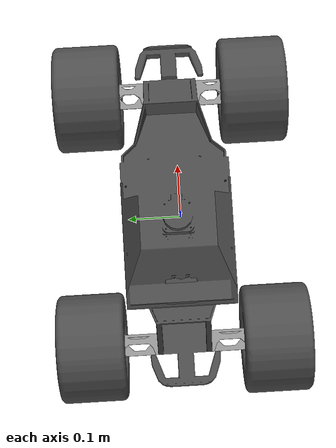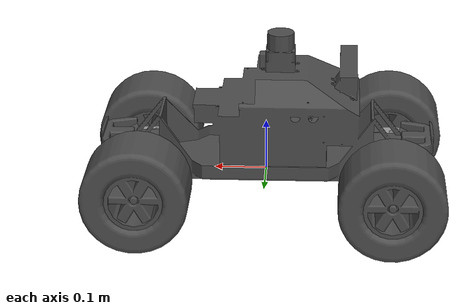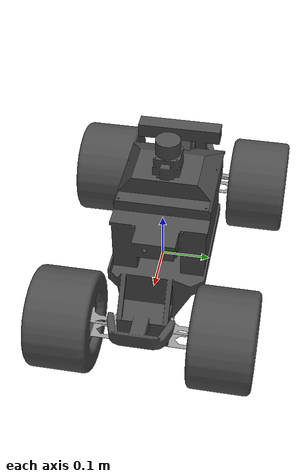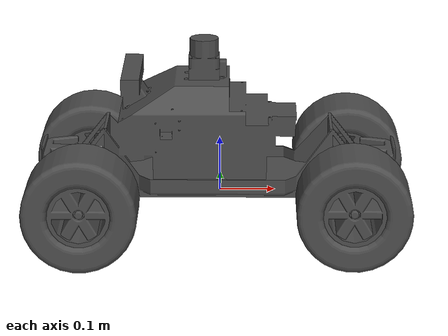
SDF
<sdf version="1.7">
 <model name="upgradedrobot">
  <link name="chassis">
   <inertial>
    <mass>25</mass>
    <inertia><ixx>0.001</ixx><ixy>0</ixy><ixz>0</ixz><iyy>0.001</iyy><iyz>0</iyz><izz>0.001</izz></inertia>
   </inertial>
   <pose>-0.00223 0.006439 -0.001176 0 -0 0</pose>
   <visual name="visual_chassis">
    <geometry><mesh><uri>/home/shea/CAD/upgradedrobot/chassisbox.dae</uri><scale>1 1 1</scale></mesh></geometry>
    <material>
     <lighting>1</lighting>
     <script><uri>file://media/materials/scripts/gazebo.material</uri><name>Gazebo/DarkGrey</name></script>
     <shader type="pixel"><normal_map>__default__</normal_map></shader>
     <ambient>0.3 0.3 0.3 1</ambient>
     <diffuse>0.7 0.7 0.7 1</diffuse>
     <specular>0.01 0.01 0.01 1</specular>
     <emissive>0 0 0 1</emissive>
    </material>
   </visual>
   <collision name="collision_chassis">
    <geometry><mesh><uri>/home/shea/CAD/upgradedrobot/chassisbox.dae</uri><scale>1 1 1</scale></mesh></geometry>
    <surface>
     <friction>
      <ode><mu>1</mu><mu2>1</mu2><fdir1>0 0 0</fdir1><slip1>0</slip1><slip2>0</slip2></ode>
      <torsional>
       <coefficient>1</coefficient>
       <patch_radius>0</patch_radius>
       <surface_radius>0</surface_radius>
       <use_patch_radius>1</use_patch_radius>
       <ode><slip>0</slip></ode>
      </torsional>
     </friction>
     <bounce><restitution_coefficient>0</restitution_coefficient><threshold>1e+06</threshold></bounce>
     <contact>
      <collide_without_contact>0</collide_without_contact>
      <collide_without_contact_bitmask>1</collide_without_contact_bitmask>
      <collide_bitmask>1</collide_bitmask>
      <ode>
       <soft_cfm>0</soft_cfm>
       <soft_erp>0.2</soft_erp>
       <kp>1e+13</kp>
       <kd>1</kd>
       <max_vel>0.01</max_vel>
       <min_depth>0</min_depth>
      </ode>
      <bullet>
       <split_impulse>1</split_impulse>
       <split_impulse_penetration_threshold>-0.01</split_impulse_penetration_threshold>
       <soft_cfm>0</soft_cfm>
       <soft_erp>0.2</soft_erp>
       <kp>1e+13</kp>
       <kd>1</kd>
      </bullet>
     </contact>
    </surface>
   </collision>
  </link>
  <link name="FLBwing">
   <inertial>
    <mass>0.2</mass>
    <inertia>
     <ixx>0.166667</ixx>
     <ixy>0</ixy>
     <ixz>0</ixz>
     <iyy>0.166667</iyy>
     <iyz>0</iyz>
     <izz>0.166667</izz>
    </inertia>
   </inertial>
   <pose>-0.24223 -0.079811 -0.002176 0 -0 1.5708</pose>
   <visual name="visualFLTwing">
    <geometry>
     <mesh><uri>/home/shea/CAD/upgradedrobot/frontlongbottomwing.dae</uri><scale>1 1 1</scale></mesh>
    </geometry>
    <material>
     <lighting>1</lighting>
     <script><uri>file://media/materials/scripts/gazebo.material</uri><name>Gazebo/Grey</name></script>
     <shader type="pixel"/>
     <emissive>0 0 0 1</emissive>
    </material>
   </visual>
   <collision name="collision_FLTwing">
    <geometry>
     <mesh><uri>/home/shea/CAD/upgradedrobot/frontlongbottomwing.dae</uri><scale>1 1 1</scale></mesh>
    </geometry>
    <surface>
     <friction>
      <ode><mu>1</mu><mu2>1</mu2><fdir1>0 0 0</fdir1><slip1>0</slip1><slip2>0</slip2></ode>
      <torsional>
       <coefficient>1</coefficient>
       <patch_radius>0</patch_radius>
       <surface_radius>0</surface_radius>
       <use_patch_radius>1</use_patch_radius>
       <ode><slip>0</slip></ode>
      </torsional>
     </friction>
     <bounce><restitution_coefficient>0</restitution_coefficient><threshold>1e+06</threshold></bounce>
     <contact>
      <collide_without_contact>0</collide_without_contact>
      <collide_without_contact_bitmask>1</collide_without_contact_bitmask>
      <collide_bitmask>1</collide_bitmask>
      <ode>
       <soft_cfm>0</soft_cfm>
       <soft_erp>0.2</soft_erp>
       <kp>1e+13</kp>
       <kd>1</kd>
       <max_vel>0.01</max_vel>
       <min_depth>0</min_depth>
      </ode>
      <bullet>
       <split_impulse>1</split_impulse>
       <split_impulse_penetration_threshold>-0.01</split_impulse_penetration_threshold>
       <soft_cfm>0</soft_cfm>
       <soft_erp>0.2</soft_erp>
       <kp>1e+13</kp>
       <kd>1</kd>
      </bullet>
     </contact>
    </surface>
   </collision>
  </link>
  <link name="BRTwing">
   <inertial>
    <mass>0.2</mass>
    <inertia>
     <ixx>0.166667</ixx>
     <ixy>0</ixy>
     <ixz>0</ixz>
     <iyy>0.166667</iyy>
     <iyz>0</iyz>
     <izz>0.166667</izz>
    </inertia>
   </inertial>
   <pose>0.23777 0.085189 0.038824 0 0 -1.5708</pose>
   <visual name="visual_BRTwing">
    <geometry>
     <mesh><uri>/home/shea/CAD/upgradedrobot/blackshorttopwing.dae</uri><scale>1 1 1</scale></mesh>
    </geometry>
    <material>
     <lighting>1</lighting>
     <script><uri>file://media/materials/scripts/gazebo.material</uri><name>Gazebo/Grey</name></script>
     <shader type="pixel"/>
     <emissive>0 0 0 1</emissive>
    </material>
   </visual>
   <collision name="collision_BRTwing">
    <geometry>
     <mesh><uri>/home/shea/CAD/upgradedrobot/blackshorttopwing.dae</uri><scale>1 1 1</scale></mesh>
    </geometry>
    <surface>
     <friction>
      <ode><mu>1</mu><mu2>1</mu2><fdir1>0 0 0</fdir1><slip1>0</slip1><slip2>0</slip2></ode>
      <torsional>
       <coefficient>1</coefficient>
       <patch_radius>0</patch_radius>
       <surface_radius>0</surface_radius>
       <use_patch_radius>1</use_patch_radius>
       <ode><slip>0</slip></ode>
      </torsional>
     </friction>
     <bounce><restitution_coefficient>0</restitution_coefficient><threshold>1e+06</threshold></bounce>
     <contact>
      <collide_without_contact>0</collide_without_contact>
      <collide_without_contact_bitmask>1</collide_without_contact_bitmask>
      <collide_bitmask>1</collide_bitmask>
      <ode>
       <soft_cfm>0</soft_cfm>
       <soft_erp>0.2</soft_erp>
       <kp>1e+13</kp>
       <kd>1</kd>
       <max_vel>0.01</max_vel>
       <min_depth>0</min_depth>
      </ode>
      <bullet>
       <split_impulse>1</split_impulse>
       <split_impulse_penetration_threshold>-0.01</split_impulse_penetration_threshold>
       <soft_cfm>0</soft_cfm>
       <soft_erp>0.2</soft_erp>
       <kp>1e+13</kp>
       <kd>1</kd>
      </bullet>
     </contact>
    </surface>
   </collision>
  </link>
  <link name="BRspindle">
   <inertial>
    <mass>0.2</mass>
    <inertia>
     <ixx>0.166667</ixx>
     <ixy>0</ixy>
     <ixz>0</ixz>
     <iyy>0.166667</iyy>
     <iyz>0</iyz>
     <izz>0.166667</izz>
    </inertia>
   </inertial>
   <pose>0.23777 0.111939 0.018824 0 -0 1.5708</pose>
   <visual name="visual_BRspindle">
    <geometry><mesh><uri>/home/shea/CAD/upgradedrobot/spindle.dae</uri><scale>1 1 1</scale></mesh></geometry>
    <material>
     <lighting>1</lighting>
     <script><uri>file://media/materials/scripts/gazebo.material</uri><name>Gazebo/Grey</name></script>
     <shader type="pixel"/>
     <emissive>0 0 0 1</emissive>
    </material>
   </visual>
   <collision name="collision_BRspindle">
    <geometry><mesh><uri>/home/shea/CAD/upgradedrobot/spindle.dae</uri><scale>1 1 1</scale></mesh></geometry>
    <surface>
     <friction>
      <ode><mu>1</mu><mu2>1</mu2><fdir1>0 0 0</fdir1><slip1>0</slip1><slip2>0</slip2></ode>
      <torsional>
       <coefficient>1</coefficient>
       <patch_radius>0</patch_radius>
       <surface_radius>0</surface_radius>
       <use_patch_radius>1</use_patch_radius>
       <ode><slip>0</slip></ode>
      </torsional>
     </friction>
     <bounce><restitution_coefficient>0</restitution_coefficient><threshold>1e+06</threshold></bounce>
     <contact>
      <collide_without_contact>0</collide_without_contact>
      <collide_without_contact_bitmask>1</collide_without_contact_bitmask>
      <collide_bitmask>1</collide_bitmask>
      <ode>
       <soft_cfm>0</soft_cfm>
       <soft_erp>0.2</soft_erp>
       <kp>1e+13</kp>
       <kd>1</kd>
       <max_vel>0.01</max_vel>
       <min_depth>0</min_depth>
      </ode>
      <bullet>
       <split_impulse>1</split_impulse>
       <split_impulse_penetration_threshold>-0.01</split_impulse_penetration_threshold>
       <soft_cfm>0</soft_cfm>
       <soft_erp>0.2</soft_erp>
       <kp>1e+13</kp>
       <kd>1</kd>
      </bullet>
     </contact>
    </surface>
   </collision>
  </link>
  <link name="BRwheel">
   <inertial>
    <mass>1</mass>
    <inertia>
     <ixx>0.166667</ixx>
     <ixy>0</ixy>
     <ixz>0</ixz>
     <iyy>0.166667</iyy>
     <iyz>0</iyz>
     <izz>0.166667</izz>
    </inertia>
   </inertial>
   <pose>0.23777 0.216939 0.018824 0 -0 3.14159</pose>
   <visual name="visual_BRwheel">
    <geometry><mesh><uri>/home/shea/CAD/upgradedrobot/wheel1.dae</uri><scale>1 1 1</scale></mesh></geometry>
    <material>
     <lighting>1</lighting>
     <script><uri>file://media/materials/scripts/gazebo.material</uri><name>Gazebo/DarkGrey</name></script>
     <shader type="pixel"/>
     <emissive>0 0 0 1</emissive>
    </material>
   </visual>
   <collision name="collision_BRwheel">
    <geometry><mesh><uri>/home/shea/CAD/upgradedrobot/wheel1.dae</uri><scale>1 1 1</scale></mesh></geometry>
    <surface>
     <friction>
      <ode><mu>1.4</mu><mu2>1.3</mu2><fdir1>0 0 0</fdir1><slip1>0</slip1><slip2>0</slip2></ode>
      <torsional>
       <coefficient>1.5</coefficient>
       <patch_radius>1</patch_radius>
       <surface_radius>0.21</surface_radius>
       <use_patch_radius>1</use_patch_radius>
       <ode><slip>0.2</slip></ode>
      </torsional>
     </friction>
     <bounce><restitution_coefficient>0.3</restitution_coefficient><threshold>1e+06</threshold></bounce>
     <contact>
      <collide_without_contact>0</collide_without_contact>
      <collide_without_contact_bitmask>1</collide_without_contact_bitmask>
      <collide_bitmask>1</collide_bitmask>
      <ode>
       <soft_cfm>0</soft_cfm>
       <soft_erp>0.2</soft_erp>
       <kp>1e+13</kp>
       <kd>1</kd>
       <max_vel>0.01</max_vel>
       <min_depth>0</min_depth>
      </ode>
      <bullet>
       <split_impulse>1</split_impulse>
       <split_impulse_penetration_threshold>-0.01</split_impulse_penetration_threshold>
       <soft_cfm>0</soft_cfm>
       <soft_erp>0.2</soft_erp>
       <kp>1e+13</kp>
       <kd>1</kd>
      </bullet>
     </contact>
    </surface>
   </collision>
  </link>
  <link name="BLBwing">
   <inertial>
    <mass>0.2</mass>
    <inertia>
     <ixx>0.166667</ixx>
     <ixy>0</ixy>
     <ixz>0</ixz>
     <iyy>0.166667</iyy>
     <iyz>0</iyz>
     <izz>0.166667</izz>
    </inertia>
   </inertial>
   <pose>0.23777 -0.072311 -0.002176 0 0 -1.5708</pose>
   <visual name="visual_BLBwing">
    <geometry>
     <mesh><uri>/home/shea/CAD/upgradedrobot/blackshortbottomwing.dae</uri><scale>1 1 1</scale></mesh>
    </geometry>
    <material>
     <lighting>1</lighting>
     <script><uri>file://media/materials/scripts/gazebo.material</uri><name>Gazebo/Grey</name></script>
     <shader type="pixel"/>
     <emissive>0 0 0 1</emissive>
    </material>
   </visual>
   <collision name="collision_BLBwing">
    <geometry>
     <mesh><uri>/home/shea/CAD/upgradedrobot/blackshortbottomwing.dae</uri><scale>1 1 1</scale></mesh>
    </geometry>
    <surface>
     <friction>
      <ode><mu>1</mu><mu2>1</mu2><fdir1>0 0 0</fdir1><slip1>0</slip1><slip2>0</slip2></ode>
      <torsional>
       <coefficient>1</coefficient>
       <patch_radius>0</patch_radius>
       <surface_radius>0</surface_radius>
       <use_patch_radius>1</use_patch_radius>
       <ode><slip>0</slip></ode>
      </torsional>
     </friction>
     <bounce><restitution_coefficient>0</restitution_coefficient><threshold>1e+06</threshold></bounce>
     <contact>
      <collide_without_contact>0</collide_without_contact>
      <collide_without_contact_bitmask>1</collide_without_contact_bitmask>
      <collide_bitmask>1</collide_bitmask>
      <ode>
       <soft_cfm>0</soft_cfm>
       <soft_erp>0.2</soft_erp>
       <kp>1e+13</kp>
       <kd>1</kd>
       <max_vel>0.01</max_vel>
       <min_depth>0</min_depth>
      </ode>
      <bullet>
       <split_impulse>1</split_impulse>
       <split_impulse_penetration_threshold>-0.01</split_impulse_penetration_threshold>
       <soft_cfm>0</soft_cfm>
       <soft_erp>0.2</soft_erp>
       <kp>1e+13</kp>
       <kd>1</kd>
      </bullet>
     </contact>
    </surface>
   </collision>
  </link>
  <link name="BLTwing">
   <inertial>
    <mass>0.2</mass>
    <inertia>
     <ixx>0.166667</ixx>
     <ixy>0</ixy>
     <ixz>0</ixz>
     <iyy>0.166667</iyy>
     <iyz>0</iyz>
     <izz>0.166667</izz>
    </inertia>
   </inertial>
   <pose>0.23777 -0.072311 0.038824 0 0 -1.5708</pose>
   <visual name="visual_BLTwing">
    <geometry>
     <mesh><uri>/home/shea/CAD/upgradedrobot/blackshorttopwing.dae</uri><scale>1 1 1</scale></mesh>
    </geometry>
    <material>
     <lighting>1</lighting>
     <script><uri>file://media/materials/scripts/gazebo.material</uri><name>Gazebo/Grey</name></script>
     <shader type="pixel"/>
     <emissive>0 0 0 1</emissive>
    </material>
   </visual>
   <collision name="collision_BLTwing">
    <geometry>
     <mesh><uri>/home/shea/CAD/upgradedrobot/blackshorttopwing.dae</uri><scale>1 1 1</scale></mesh>
    </geometry>
    <surface>
     <friction>
      <ode><mu>1</mu><mu2>1</mu2><fdir1>0 0 0</fdir1><slip1>0</slip1><slip2>0</slip2></ode>
      <torsional>
       <coefficient>1</coefficient>
       <patch_radius>0</patch_radius>
       <surface_radius>0</surface_radius>
       <use_patch_radius>1</use_patch_radius>
       <ode><slip>0</slip></ode>
      </torsional>
     </friction>
     <bounce><restitution_coefficient>0</restitution_coefficient><threshold>1e+06</threshold></bounce>
     <contact>
      <collide_without_contact>0</collide_without_contact>
      <collide_without_contact_bitmask>1</collide_without_contact_bitmask>
      <collide_bitmask>1</collide_bitmask>
      <ode>
       <soft_cfm>0</soft_cfm>
       <soft_erp>0.2</soft_erp>
       <kp>1e+13</kp>
       <kd>1</kd>
       <max_vel>0.01</max_vel>
       <min_depth>0</min_depth>
      </ode>
      <bullet>
       <split_impulse>1</split_impulse>
       <split_impulse_penetration_threshold>-0.01</split_impulse_penetration_threshold>
       <soft_cfm>0</soft_cfm>
       <soft_erp>0.2</soft_erp>
       <kp>1e+13</kp>
       <kd>1</kd>
      </bullet>
     </contact>
    </surface>
   </collision>
  </link>
  <link name="BLspindle">
   <inertial>
    <mass>0.2</mass>
    <inertia>
     <ixx>0.166667</ixx>
     <ixy>0</ixy>
     <ixz>0</ixz>
     <iyy>0.166667</iyy>
     <iyz>0</iyz>
     <izz>0.166667</izz>
    </inertia>
   </inertial>
   <pose>0.23777 -0.099061 0.018824 0 0 -1.5708</pose>
   <visual name="visual_BLspindle">
    <geometry><mesh><uri>/home/shea/CAD/upgradedrobot/spindle.dae</uri><scale>1 1 1</scale></mesh></geometry>
    <material>
     <lighting>1</lighting>
     <script><uri>file://media/materials/scripts/gazebo.material</uri><name>Gazebo/Grey</name></script>
     <shader type="pixel"/>
     <emissive>0 0 0 1</emissive>
    </material>
   </visual>
   <collision name="collision_BLspindle">
    <geometry><mesh><uri>/home/shea/CAD/upgradedrobot/spindle.dae</uri><scale>1 1 1</scale></mesh></geometry>
    <surface>
     <friction>
      <ode><mu>1</mu><mu2>1</mu2><fdir1>0 0 0</fdir1><slip1>0</slip1><slip2>0</slip2></ode>
      <torsional>
       <coefficient>1</coefficient>
       <patch_radius>0</patch_radius>
       <surface_radius>0</surface_radius>
       <use_patch_radius>1</use_patch_radius>
       <ode><slip>0</slip></ode>
      </torsional>
     </friction>
     <bounce><restitution_coefficient>0</restitution_coefficient><threshold>1e+06</threshold></bounce>
     <contact>
      <collide_without_contact>0</collide_without_contact>
      <collide_without_contact_bitmask>1</collide_without_contact_bitmask>
      <collide_bitmask>1</collide_bitmask>
      <ode>
       <soft_cfm>0</soft_cfm>
       <soft_erp>0.2</soft_erp>
       <kp>1e+13</kp>
       <kd>1</kd>
       <max_vel>0.01</max_vel>
       <min_depth>0</min_depth>
      </ode>
      <bullet>
       <split_impulse>1</split_impulse>
       <split_impulse_penetration_threshold>-0.01</split_impulse_penetration_threshold>
       <soft_cfm>0</soft_cfm>
       <soft_erp>0.2</soft_erp>
       <kp>1e+13</kp>
       <kd>1</kd>
      </bullet>
     </contact>
    </surface>
   </collision>
  </link>
  <link name="BLwheel">
   <inertial>
    <mass>1</mass>
    <inertia>
     <ixx>0.166667</ixx>
     <ixy>0</ixy>
     <ixz>0</ixz>
     <iyy>0.166667</iyy>
     <iyz>0</iyz>
     <izz>0.166667</izz>
    </inertia>
   </inertial>
   <pose>0.23777 -0.204061 0.018824 0 -0 0</pose>
   <visual name="visual_BLwheel">
    <geometry><mesh><uri>/home/shea/CAD/upgradedrobot/wheel1.dae</uri><scale>1 1 1</scale></mesh></geometry>
    <material>
     <lighting>1</lighting>
     <script><uri>file://media/materials/scripts/gazebo.material</uri><name>Gazebo/DarkGrey</name></script>
     <shader type="pixel"/>
     <emissive>0 0 0 1</emissive>
    </material>
   </visual>
   <collision name="collision_BLwheel">
    <geometry><mesh><uri>/home/shea/CAD/upgradedrobot/wheel1.dae</uri><scale>1 1 1</scale></mesh></geometry>
    <surface>
     <friction>
      <ode><mu>1.4</mu><mu2>1.3</mu2><fdir1>0 0 0</fdir1><slip1>0</slip1><slip2>0</slip2></ode>
      <torsional>
       <coefficient>1.5</coefficient>
       <patch_radius>1</patch_radius>
       <surface_radius>0.21</surface_radius>
       <use_patch_radius>1</use_patch_radius>
       <ode><slip>0.2</slip></ode>
      </torsional>
     </friction>
     <bounce><restitution_coefficient>0.3</restitution_coefficient><threshold>1e+06</threshold></bounce>
     <contact>
      <collide_without_contact>0</collide_without_contact>
      <collide_without_contact_bitmask>1</collide_without_contact_bitmask>
      <collide_bitmask>1</collide_bitmask>
      <ode>
       <soft_cfm>0</soft_cfm>
       <soft_erp>0.2</soft_erp>
       <kp>1e+13</kp>
       <kd>1</kd>
       <max_vel>0.01</max_vel>
       <min_depth>0</min_depth>
      </ode>
      <bullet>
       <split_impulse>1</split_impulse>
       <split_impulse_penetration_threshold>-0.01</split_impulse_penetration_threshold>
       <soft_cfm>0</soft_cfm>
       <soft_erp>0.2</soft_erp>
       <kp>1e+13</kp>
       <kd>1</kd>
      </bullet>
     </contact>
    </surface>
   </collision>
  </link>
  <link name="FLTwing">
   <inertial>
    <mass>0.2</mass>
    <inertia>
     <ixx>0.166667</ixx>
     <ixy>0</ixy>
     <ixz>0</ixz>
     <iyy>0.166667</iyy>
     <iyz>0</iyz>
     <izz>0.166667</izz>
    </inertia>
   </inertial>
   <pose>-0.24223 -0.079811 0.038824 0 0 -1.5708</pose>
   <visual name="visual_FLTwing">
    <geometry>
     <mesh><uri>/home/shea/CAD/upgradedrobot/frontlongtopwing.dae</uri><scale>1 1 1</scale></mesh>
    </geometry>
    <material>
     <lighting>1</lighting>
     <script><uri>file://media/materials/scripts/gazebo.material</uri><name>Gazebo/Grey</name></script>
     <shader type="pixel"/>
     <emissive>0 0 0 1</emissive>
    </material>
   </visual>
   <collision name="collision_FLTwing">
    <geometry>
     <mesh><uri>/home/shea/CAD/upgradedrobot/frontlongtopwing.dae</uri><scale>1 1 1</scale></mesh>
    </geometry>
    <surface>
     <friction>
      <ode><mu>1</mu><mu2>1</mu2><fdir1>0 0 0</fdir1><slip1>0</slip1><slip2>0</slip2></ode>
      <torsional>
       <coefficient>1</coefficient>
       <patch_radius>0</patch_radius>
       <surface_radius>0</surface_radius>
       <use_patch_radius>1</use_patch_radius>
       <ode><slip>0</slip></ode>
      </torsional>
     </friction>
     <bounce><restitution_coefficient>0</restitution_coefficient><threshold>1e+06</threshold></bounce>
     <contact>
      <collide_without_contact>0</collide_without_contact>
      <collide_without_contact_bitmask>1</collide_without_contact_bitmask>
      <collide_bitmask>1</collide_bitmask>
      <ode>
       <soft_cfm>0</soft_cfm>
       <soft_erp>0.2</soft_erp>
       <kp>1e+13</kp>
       <kd>1</kd>
       <max_vel>0.01</max_vel>
       <min_depth>0</min_depth>
      </ode>
      <bullet>
       <split_impulse>1</split_impulse>
       <split_impulse_penetration_threshold>-0.01</split_impulse_penetration_threshold>
       <soft_cfm>0</soft_cfm>
       <soft_erp>0.2</soft_erp>
       <kp>1e+13</kp>
       <kd>1</kd>
      </bullet>
     </contact>
    </surface>
   </collision>
  </link>
  <link name="FLspindle">
   <inertial>
    <mass>0.2</mass>
    <inertia>
     <ixx>0.166667</ixx>
     <ixy>0</ixy>
     <ixz>0</ixz>
     <iyy>0.166667</iyy>
     <iyz>0</iyz>
     <izz>0.166667</izz>
    </inertia>
   </inertial>
   <pose>-0.24223 -0.114061 0.018824 0 0 -1.5708</pose>
   <visual name="visual_FLspindle">
    <geometry><mesh><uri>/home/shea/CAD/upgradedrobot/spindle.dae</uri><scale>1 1 1</scale></mesh></geometry>
    <material>
     <lighting>1</lighting>
     <script><uri>file://media/materials/scripts/gazebo.material</uri><name>Gazebo/Grey</name></script>
     <shader type="pixel"/>
     <emissive>0 0 0 1</emissive>
    </material>
   </visual>
   <collision name="collision_FLspindle">
    <geometry><mesh><uri>/home/shea/CAD/upgradedrobot/spindle.dae</uri><scale>1 1 1</scale></mesh></geometry>
    <surface>
     <friction>
      <ode><mu>1</mu><mu2>1</mu2><fdir1>0 0 0</fdir1><slip1>0</slip1><slip2>0</slip2></ode>
      <torsional>
       <coefficient>1</coefficient>
       <patch_radius>0</patch_radius>
       <surface_radius>0</surface_radius>
       <use_patch_radius>1</use_patch_radius>
       <ode><slip>0</slip></ode>
      </torsional>
     </friction>
     <bounce><restitution_coefficient>0</restitution_coefficient><threshold>1e+06</threshold></bounce>
     <contact>
      <collide_without_contact>0</collide_without_contact>
      <collide_without_contact_bitmask>1</collide_without_contact_bitmask>
      <collide_bitmask>1</collide_bitmask>
      <ode>
       <soft_cfm>0</soft_cfm>
       <soft_erp>0.2</soft_erp>
       <kp>1e+13</kp>
       <kd>1</kd>
       <max_vel>0.01</max_vel>
       <min_depth>0</min_depth>
      </ode>
      <bullet>
       <split_impulse>1</split_impulse>
       <split_impulse_penetration_threshold>-0.01</split_impulse_penetration_threshold>
       <soft_cfm>0</soft_cfm>
       <soft_erp>0.2</soft_erp>
       <kp>1e+13</kp>
       <kd>1</kd>
      </bullet>
     </contact>
    </surface>
   </collision>
  </link>
  <link name="FLwheel">
   <inertial>
    <mass>1</mass>
    <inertia>
     <ixx>0.166667</ixx>
     <ixy>0</ixy>
     <ixz>0</ixz>
     <iyy>0.166667</iyy>
     <iyz>0</iyz>
     <izz>0.166667</izz>
    </inertia>
   </inertial>
   <pose>-0.24223 -0.219061 0.020824 0 -0 0</pose>
   <visual name="visual_FLwheel">
    <geometry><mesh><uri>/home/shea/CAD/upgradedrobot/wheel1.dae</uri><scale>1 1 1</scale></mesh></geometry>
    <material>
     <lighting>1</lighting>
     <script><uri>file://media/materials/scripts/gazebo.material</uri><name>Gazebo/DarkGrey</name></script>
     <shader type="pixel"/>
     <emissive>0 0 0 1</emissive>
    </material>
   </visual>
   <collision name="collision_FLwheel">
    <geometry><mesh><uri>/home/shea/CAD/upgradedrobot/wheel1.dae</uri><scale>1 1 1</scale></mesh></geometry>
    <surface>
     <friction>
      <ode><mu>1.4</mu><mu2>1.3</mu2><fdir1>0 0 0</fdir1><slip1>0</slip1><slip2>0</slip2></ode>
      <torsional>
       <coefficient>1.5</coefficient>
       <patch_radius>1</patch_radius>
       <surface_radius>0.21</surface_radius>
       <use_patch_radius>1</use_patch_radius>
       <ode><slip>0.2</slip></ode>
      </torsional>
     </friction>
     <bounce><restitution_coefficient>0.3</restitution_coefficient><threshold>1e+06</threshold></bounce>
     <contact>
      <collide_without_contact>0</collide_without_contact>
      <collide_without_contact_bitmask>1</collide_without_contact_bitmask>
      <collide_bitmask>1</collide_bitmask>
      <ode>
       <soft_cfm>0</soft_cfm>
       <soft_erp>0.2</soft_erp>
       <kp>1e+13</kp>
       <kd>1</kd>
       <max_vel>0.01</max_vel>
       <min_depth>0</min_depth>
      </ode>
      <bullet>
       <split_impulse>1</split_impulse>
       <split_impulse_penetration_threshold>-0.01</split_impulse_penetration_threshold>
       <soft_cfm>0</soft_cfm>
       <soft_erp>0.2</soft_erp>
       <kp>1e+13</kp>
       <kd>1</kd>
      </bullet>
     </contact>
    </surface>
   </collision>
  </link>
  <link name="FRBwing">
   <inertial>
    <mass>0.2</mass>
    <inertia>
     <ixx>0.166667</ixx>
     <ixy>0</ixy>
     <ixz>0</ixz>
     <iyy>0.166667</iyy>
     <iyz>0</iyz>
     <izz>0.166667</izz>
    </inertia>
   </inertial>
   <pose>-0.24223 0.092689 -0.002176 0 -0 1.5708</pose>
   <visual name="visual_FRBwing">
    <geometry>
     <mesh><uri>/home/shea/CAD/upgradedrobot/frontlongbottomwing.dae</uri><scale>1 1 1</scale></mesh>
    </geometry>
    <material>
     <lighting>1</lighting>
     <script><uri>file://media/materials/scripts/gazebo.material</uri><name>Gazebo/Grey</name></script>
     <shader type="pixel"/>
     <emissive>0 0 0 1</emissive>
    </material>
   </visual>
   <collision name="collision_FRBwing">
    <geometry>
     <mesh><uri>/home/shea/CAD/upgradedrobot/frontlongbottomwing.dae</uri><scale>1 1 1</scale></mesh>
    </geometry>
    <surface>
     <friction>
      <ode><mu>1</mu><mu2>1</mu2><fdir1>0 0 0</fdir1><slip1>0</slip1><slip2>0</slip2></ode>
      <torsional>
       <coefficient>1</coefficient>
       <patch_radius>0</patch_radius>
       <surface_radius>0</surface_radius>
       <use_patch_radius>1</use_patch_radius>
       <ode><slip>0</slip></ode>
      </torsional>
     </friction>
     <bounce><restitution_coefficient>0</restitution_coefficient><threshold>1e+06</threshold></bounce>
     <contact>
      <collide_without_contact>0</collide_without_contact>
      <collide_without_contact_bitmask>1</collide_without_contact_bitmask>
      <collide_bitmask>1</collide_bitmask>
      <ode>
       <soft_cfm>0</soft_cfm>
       <soft_erp>0.2</soft_erp>
       <kp>1e+13</kp>
       <kd>1</kd>
       <max_vel>0.01</max_vel>
       <min_depth>0</min_depth>
      </ode>
      <bullet>
       <split_impulse>1</split_impulse>
       <split_impulse_penetration_threshold>-0.01</split_impulse_penetration_threshold>
       <soft_cfm>0</soft_cfm>
       <soft_erp>0.2</soft_erp>
       <kp>1e+13</kp>
       <kd>1</kd>
      </bullet>
     </contact>
    </surface>
   </collision>
  </link>
  <link name="FRTwing">
   <inertial>
    <mass>0.2</mass>
    <inertia>
     <ixx>0.166667</ixx>
     <ixy>0</ixy>
     <ixz>0</ixz>
     <iyy>0.166667</iyy>
     <iyz>0</iyz>
     <izz>0.166667</izz>
    </inertia>
   </inertial>
   <pose>-0.24223 0.092689 0.038824 0 0 -1.5708</pose>
   <visual name="visual_FRTwing">
    <geometry>
     <mesh><uri>/home/shea/CAD/upgradedrobot/frontlongtopwing.dae</uri><scale>1 1 1</scale></mesh>
    </geometry>
    <material>
     <lighting>1</lighting>
     <script><uri>file://media/materials/scripts/gazebo.material</uri><name>Gazebo/Grey</name></script>
     <shader type="pixel"/>
     <emissive>0 0 0 1</emissive>
    </material>
   </visual>
   <collision name="collision_FRTwing">
    <geometry>
     <mesh><uri>/home/shea/CAD/upgradedrobot/frontlongtopwing.dae</uri><scale>1 1 1</scale></mesh>
    </geometry>
    <surface>
     <friction>
      <ode><mu>1</mu><mu2>1</mu2><fdir1>0 0 0</fdir1><slip1>0</slip1><slip2>0</slip2></ode>
      <torsional>
       <coefficient>1</coefficient>
       <patch_radius>0</patch_radius>
       <surface_radius>0</surface_radius>
       <use_patch_radius>1</use_patch_radius>
       <ode><slip>0</slip></ode>
      </torsional>
     </friction>
     <bounce><restitution_coefficient>0</restitution_coefficient><threshold>1e+06</threshold></bounce>
     <contact>
      <collide_without_contact>0</collide_without_contact>
      <collide_without_contact_bitmask>1</collide_without_contact_bitmask>
      <collide_bitmask>1</collide_bitmask>
      <ode>
       <soft_cfm>0</soft_cfm>
       <soft_erp>0.2</soft_erp>
       <kp>1e+13</kp>
       <kd>1</kd>
       <max_vel>0.01</max_vel>
       <min_depth>0</min_depth>
      </ode>
      <bullet>
       <split_impulse>1</split_impulse>
       <split_impulse_penetration_threshold>-0.01</split_impulse_penetration_threshold>
       <soft_cfm>0</soft_cfm>
       <soft_erp>0.2</soft_erp>
       <kp>1e+13</kp>
       <kd>1</kd>
      </bullet>
     </contact>
    </surface>
   </collision>
  </link>
  <link name="FRspindle">
   <inertial>
    <mass>0.2</mass>
    <inertia>
     <ixx>0.166667</ixx>
     <ixy>0</ixy>
     <ixz>0</ixz>
     <iyy>0.166667</iyy>
     <iyz>0</iyz>
     <izz>0.166667</izz>
    </inertia>
   </inertial>
   <pose>-0.24223 0.126939 0.017824 0 -0 1.5708</pose>
   <visual name="visual_FRspindle">
    <geometry><mesh><uri>/home/shea/CAD/upgradedrobot/spindle.dae</uri><scale>1 1 1</scale></mesh></geometry>
    <material>
     <lighting>1</lighting>
     <script><uri>file://media/materials/scripts/gazebo.material</uri><name>Gazebo/Grey</name></script>
     <shader type="pixel"/>
     <emissive>0 0 0 1</emissive>
    </material>
   </visual>
   <collision name="collision_FRspindle">
    <geometry><mesh><uri>/home/shea/CAD/upgradedrobot/spindle.dae</uri><scale>1 1 1</scale></mesh></geometry>
    <surface>
     <friction>
      <ode><mu>1</mu><mu2>1</mu2><fdir1>0 0 0</fdir1><slip1>0</slip1><slip2>0</slip2></ode>
      <torsional>
       <coefficient>1</coefficient>
       <patch_radius>0</patch_radius>
       <surface_radius>0</surface_radius>
       <use_patch_radius>1</use_patch_radius>
       <ode><slip>0</slip></ode>
      </torsional>
     </friction>
     <bounce><restitution_coefficient>0</restitution_coefficient><threshold>1e+06</threshold></bounce>
     <contact>
      <collide_without_contact>0</collide_without_contact>
      <collide_without_contact_bitmask>1</collide_without_contact_bitmask>
      <collide_bitmask>1</collide_bitmask>
      <ode>
       <soft_cfm>0</soft_cfm>
       <soft_erp>0.2</soft_erp>
       <kp>1e+13</kp>
       <kd>1</kd>
       <max_vel>0.01</max_vel>
       <min_depth>0</min_depth>
      </ode>
      <bullet>
       <split_impulse>1</split_impulse>
       <split_impulse_penetration_threshold>-0.01</split_impulse_penetration_threshold>
       <soft_cfm>0</soft_cfm>
       <soft_erp>0.2</soft_erp>
       <kp>1e+13</kp>
       <kd>1</kd>
      </bullet>
     </contact>
    </surface>
   </collision>
  </link>
  <link name="FRwheel">
   <inertial>
    <mass>1</mass>
    <inertia>
     <ixx>0.166667</ixx>
     <ixy>0</ixy>
     <ixz>0</ixz>
     <iyy>0.166667</iyy>
     <iyz>0</iyz>
     <izz>0.166667</izz>
    </inertia>
   </inertial>
   <pose>-0.24223 0.231939 0.017824 0 -0 3.14159</pose>
   <visual name="visual_FRwheel">
    <geometry><mesh><uri>/home/shea/CAD/upgradedrobot/wheel1.dae</uri><scale>1 1 1</scale></mesh></geometry>
    <material>
     <lighting>1</lighting>
     <script><uri>file://media/materials/scripts/gazebo.material</uri><name>Gazebo/DarkGrey</name></script>
     <shader type="pixel"/>
     <emissive>0 0 0 1</emissive>
    </material>
   </visual>
   <collision name="collision_FRwheel">
    <geometry><mesh><uri>/home/shea/CAD/upgradedrobot/wheel1.dae</uri><scale>1 1 1</scale></mesh></geometry>
    <surface>
     <friction>
      <ode><mu>1.4</mu><mu2>1.3</mu2><fdir1>0 0 0</fdir1><slip1>0</slip1><slip2>0</slip2></ode>
      <torsional>
       <coefficient>1.5</coefficient>
       <patch_radius>1</patch_radius>
       <surface_radius>0.21</surface_radius>
       <use_patch_radius>1</use_patch_radius>
       <ode><slip>0.2</slip></ode>
      </torsional>
     </friction>
     <bounce><restitution_coefficient>0.3</restitution_coefficient><threshold>1e+06</threshold></bounce>
     <contact>
      <collide_without_contact>0</collide_without_contact>
      <collide_without_contact_bitmask>1</collide_without_contact_bitmask>
      <collide_bitmask>1</collide_bitmask>
      <ode>
       <soft_cfm>0</soft_cfm>
       <soft_erp>0.2</soft_erp>
       <kp>1e+13</kp>
       <kd>1</kd>
       <max_vel>0.01</max_vel>
       <min_depth>0</min_depth>
      </ode>
      <bullet>
       <split_impulse>1</split_impulse>
       <split_impulse_penetration_threshold>-0.01</split_impulse_penetration_threshold>
       <soft_cfm>0</soft_cfm>
       <soft_erp>0.2</soft_erp>
       <kp>1e+13</kp>
       <kd>1</kd>
      </bullet>
     </contact>
    </surface>
   </collision>
  </link>
  <link name="BRBwing">
   <inertial>
    <mass>0.2</mass>
    <inertia>
     <ixx>0.166667</ixx>
     <ixy>0</ixy>
     <ixz>0</ixz>
     <iyy>0.166667</iyy>
     <iyz>0</iyz>
     <izz>0.166667</izz>
    </inertia>
   </inertial>
   <pose>0.23777 0.085189 -0.002176 0 -0 1.5708</pose>
   <visual name="visual_BRBwing">
    <geometry>
     <mesh><uri>/home/shea/CAD/upgradedrobot/blackshortbottomwing.dae</uri><scale>1 1 1</scale></mesh>
    </geometry>
    <material>
     <lighting>1</lighting>
     <script><uri>file://media/materials/scripts/gazebo.material</uri><name>Gazebo/Grey</name></script>
     <shader type="pixel"/>
     <emissive>0 0 0 1</emissive>
    </material>
   </visual>
   <collision name="collision_BRBwing">
    <geometry>
     <mesh><uri>/home/shea/CAD/upgradedrobot/blackshortbottomwing.dae</uri><scale>1 1 1</scale></mesh>
    </geometry>
    <surface>
     <friction>
      <ode><mu>1</mu><mu2>1</mu2><fdir1>0 0 0</fdir1><slip1>0</slip1><slip2>0</slip2></ode>
      <torsional>
       <coefficient>1</coefficient>
       <patch_radius>0</patch_radius>
       <surface_radius>0</surface_radius>
       <use_patch_radius>1</use_patch_radius>
       <ode><slip>0</slip></ode>
      </torsional>
     </friction>
     <bounce><restitution_coefficient>0</restitution_coefficient><threshold>1e+06</threshold></bounce>
     <contact>
      <collide_without_contact>0</collide_without_contact>
      <collide_without_contact_bitmask>1</collide_without_contact_bitmask>
      <collide_bitmask>1</collide_bitmask>
      <ode>
       <soft_cfm>0</soft_cfm>
       <soft_erp>0.2</soft_erp>
       <kp>1e+13</kp>
       <kd>1</kd>
       <max_vel>0.01</max_vel>
       <min_depth>0</min_depth>
      </ode>
      <bullet>
       <split_impulse>1</split_impulse>
       <split_impulse_penetration_threshold>-0.01</split_impulse_penetration_threshold>
       <soft_cfm>0</soft_cfm>
       <soft_erp>0.2</soft_erp>
       <kp>1e+13</kp>
       <kd>1</kd>
      </bullet>
     </contact>
    </surface>
   </collision>
  </link>
  <joint name="chassis_FLBwing_joint" type="revolute">
   <parent>chassis</parent>
   <child>FLBwing</child>
   <pose>0.03625 0 0.001 0 -0 0</pose>
   <axis>
    <xyz>0 1 0</xyz>
    <limit>
     <lower>-1.79769e+308</lower>
     <upper>1.79769e+308</upper>
     <effort>-1</effort>
     <velocity>-1</velocity>
    </limit>
    <dynamics>
     <spring_reference>-0.02</spring_reference>
     <spring_stiffness>175</spring_stiffness>
     <damping>0.2</damping>
     <friction>0</friction>
    </dynamics>
   </axis>
   <physics>
    <ode><limit><cfm>0</cfm><erp>0.2</erp></limit><suspension><cfm>0</cfm><erp>0.2</erp></suspension></ode>
   </physics>
  </joint>
  <joint name="chassis_BRTwing_joint" type="revolute">
   <parent>chassis</parent>
   <child>BRTwing</child>
   <pose>0.02875 0 0 0 -0 0</pose>
   <axis>
    <xyz>0 1 0</xyz>
    <limit>
     <lower>-1.79769e+308</lower>
     <upper>1.79769e+308</upper>
     <effort>-1</effort>
     <velocity>-1</velocity>
    </limit>
    <dynamics>
     <spring_reference>0</spring_reference>
     <spring_stiffness>0</spring_stiffness>
     <damping>0.2</damping>
     <friction>0</friction>
    </dynamics>
   </axis>
   <physics>
    <ode><limit><cfm>0</cfm><erp>0.2</erp></limit><suspension><cfm>0</cfm><erp>0.2</erp></suspension></ode>
   </physics>
  </joint>
  <joint name="chassis_BLBwing_joint" type="revolute">
   <parent>chassis</parent>
   <child>BLBwing</child>
   <pose>-0.02875 0 0 0 -0 0</pose>
   <axis>
    <xyz>0 1 0</xyz>
    <limit>
     <lower>-1.79769e+308</lower>
     <upper>1.79769e+308</upper>
     <effort>-1</effort>
     <velocity>-1</velocity>
    </limit>
    <dynamics>
     <spring_reference>0</spring_reference>
     <spring_stiffness>200</spring_stiffness>
     <damping>0.2</damping>
     <friction>0</friction>
    </dynamics>
   </axis>
   <physics>
    <ode><limit><cfm>0</cfm><erp>0.2</erp></limit><suspension><cfm>0</cfm><erp>0.2</erp></suspension></ode>
   </physics>
  </joint>
  <joint name="chassis_BLTwing_joint" type="revolute">
   <parent>chassis</parent>
   <child>BLTwing</child>
   <pose>-0.02875 0 0 0 -0 0</pose>
   <axis>
    <xyz>0 1 0</xyz>
    <limit>
     <lower>-1.79769e+308</lower>
     <upper>1.79769e+308</upper>
     <effort>-1</effort>
     <velocity>-1</velocity>
    </limit>
    <dynamics>
     <spring_reference>0</spring_reference>
     <spring_stiffness>0</spring_stiffness>
     <damping>0.2</damping>
     <friction>0</friction>
    </dynamics>
   </axis>
   <physics>
    <ode><limit><cfm>0</cfm><erp>0.2</erp></limit><suspension><cfm>0</cfm><erp>0.2</erp></suspension></ode>
   </physics>
  </joint>
  <joint name="chassis_FLTwing_joint" type="revolute">
   <parent>chassis</parent>
   <child>FLTwing</child>
   <pose>-0.03625 0 0 0 -0 0</pose>
   <axis>
    <xyz>0 1 0</xyz>
    <limit>
     <lower>-1.79769e+308</lower>
     <upper>1.79769e+308</upper>
     <effort>-1</effort>
     <velocity>-1</velocity>
    </limit>
    <dynamics>
     <spring_reference>0</spring_reference>
     <spring_stiffness>0</spring_stiffness>
     <damping>0.2</damping>
     <friction>0</friction>
    </dynamics>
   </axis>
   <physics>
    <ode><limit><cfm>0</cfm><erp>0.2</erp></limit><suspension><cfm>0</cfm><erp>0.2</erp></suspension></ode>
   </physics>
  </joint>
  <joint name="chassis_FRBwing_joint" type="revolute">
   <parent>chassis</parent>
   <child>FRBwing</child>
   <pose>-0.03625 0 0 0 -0 0</pose>
   <axis>
    <xyz>0 1 0</xyz>
    <limit>
     <lower>-1.79769e+308</lower>
     <upper>1.79769e+308</upper>
     <effort>-1</effort>
     <velocity>-1</velocity>
    </limit>
    <dynamics>
     <spring_reference>-0.02</spring_reference>
     <spring_stiffness>175</spring_stiffness>
     <damping>0.2</damping>
     <friction>0</friction>
    </dynamics>
   </axis>
   <physics>
    <ode><limit><cfm>0</cfm><erp>0.2</erp></limit><suspension><cfm>0</cfm><erp>0.2</erp></suspension></ode>
   </physics>
  </joint>
  <joint name="chassis_FRTwing_joint" type="revolute">
   <parent>chassis</parent>
   <child>FRTwing</child>
   <pose>0.03425 0 0 0 -0 0</pose>
   <axis>
    <xyz>0 1 0</xyz>
    <limit>
     <lower>-1.79769e+308</lower>
     <upper>1.79769e+308</upper>
     <effort>-1</effort>
     <velocity>-1</velocity>
    </limit>
    <dynamics>
     <spring_reference>0</spring_reference>
     <spring_stiffness>0</spring_stiffness>
     <damping>0.2</damping>
     <friction>0</friction>
    </dynamics>
   </axis>
   <physics>
    <ode><limit><cfm>0</cfm><erp>0.2</erp></limit><suspension><cfm>0</cfm><erp>0.2</erp></suspension></ode>
   </physics>
  </joint>
  <joint name="spindleBRT_joint" type="revolute">
   <parent>BRTwing</parent>
   <child>BRspindle</child>
   <pose>0 0 0.02 0 -0 0</pose>
   <axis>
    <xyz>0 1 0</xyz>
    <limit>
     <lower>-1.79769e+308</lower>
     <upper>1.79769e+308</upper>
     <effort>-1</effort>
     <velocity>-1</velocity>
    </limit>
    <dynamics>
     <spring_reference>0</spring_reference>
     <spring_stiffness>0</spring_stiffness>
     <damping>0</damping>
     <friction>0</friction>
    </dynamics>
   </axis>
   <physics>
    <ode><limit><cfm>0</cfm><erp>0.2</erp></limit><suspension><cfm>0</cfm><erp>0.2</erp></suspension></ode>
   </physics>
  </joint>
  <joint name="wheelBR_joint" type="revolute">
   <parent>BRspindle</parent>
   <child>BRwheel</child>
   <pose>0 0.05 0 0 -0 0</pose>
   <axis>
    <xyz>0 1 0</xyz>
    <limit>
     <lower>-1.79769e+308</lower>
     <upper>1.79769e+308</upper>
     <effort>-1</effort>
     <velocity>-1</velocity>
    </limit>
    <dynamics>
     <spring_reference>0</spring_reference>
     <spring_stiffness>0</spring_stiffness>
     <damping>0</damping>
     <friction>0</friction>
    </dynamics>
   </axis>
   <physics>
    <ode><limit><cfm>0</cfm><erp>0.2</erp></limit><suspension><cfm>0</cfm><erp>0.2</erp></suspension></ode>
   </physics>
  </joint>
  <joint name="spindleBLB_joint" type="revolute">
   <parent>BLBwing</parent>
   <child>BLspindle</child>
   <pose>0 0 -0.02 0 -0 0</pose>
   <axis>
    <xyz>0 -1 0</xyz>
    <limit>
     <lower>-1.79769e+308</lower>
     <upper>1.79769e+308</upper>
     <effort>-1</effort>
     <velocity>-1</velocity>
    </limit>
    <dynamics>
     <spring_reference>0</spring_reference>
     <spring_stiffness>0</spring_stiffness>
     <damping>0</damping>
     <friction>0</friction>
    </dynamics>
   </axis>
   <physics>
    <ode><limit><cfm>0</cfm><erp>0.2</erp></limit><suspension><cfm>0</cfm><erp>0.2</erp></suspension></ode>
   </physics>
  </joint>
  <joint name="spindleBLT_joint" type="revolute">
   <parent>BLTwing</parent>
   <child>BLspindle</child>
   <pose>0 0 0.02 0 -0 0</pose>
   <axis>
    <xyz>0 -1 0</xyz>
    <limit>
     <lower>-1.79769e+308</lower>
     <upper>1.79769e+308</upper>
     <effort>-1</effort>
     <velocity>-1</velocity>
    </limit>
    <dynamics>
     <spring_reference>0</spring_reference>
     <spring_stiffness>0</spring_stiffness>
     <damping>0</damping>
     <friction>0</friction>
    </dynamics>
   </axis>
   <physics>
    <ode><limit><cfm>0</cfm><erp>0.2</erp></limit><suspension><cfm>0</cfm><erp>0.2</erp></suspension></ode>
   </physics>
  </joint>
  <joint name="wheelBL_joint" type="revolute">
   <parent>BLspindle</parent>
   <child>BLwheel</child>
   <pose>0 0.05 0 0 -0 0</pose>
   <axis>
    <xyz>0 1 0</xyz>
    <limit>
     <lower>-1.79769e+308</lower>
     <upper>1.79769e+308</upper>
     <effort>-1</effort>
     <velocity>-1</velocity>
    </limit>
    <dynamics>
     <spring_reference>0</spring_reference>
     <spring_stiffness>0</spring_stiffness>
     <damping>0</damping>
     <friction>0</friction>
    </dynamics>
   </axis>
   <physics>
    <ode><limit><cfm>0</cfm><erp>0.2</erp></limit><suspension><cfm>0</cfm><erp>0.2</erp></suspension></ode>
   </physics>
  </joint>
  <joint name="spindleFLB_joint" type="ball">
   <parent>FLBwing</parent>
   <child>FLspindle</child>
   <pose>0 0 -0.02 0 -0 0</pose>
   <axis>
    <xyz>0 -1 0</xyz>
    <limit>
     <lower>-1.79769e+308</lower>
     <upper>1.79769e+308</upper>
     <effort>-1</effort>
     <velocity>-1</velocity>
    </limit>
    <dynamics>
     <spring_reference>0</spring_reference>
     <spring_stiffness>0</spring_stiffness>
     <damping>0</damping>
     <friction>0</friction>
    </dynamics>
   </axis>
   <physics>
    <ode><limit><cfm>0</cfm><erp>0.2</erp></limit><suspension><cfm>0</cfm><erp>0.2</erp></suspension></ode>
   </physics>
  </joint>
  <joint name="spindleFLT_joint" type="ball">
   <parent>FLTwing</parent>
   <child>FLspindle</child>
   <pose>0 0 0.02 0 -0 0</pose>
   <axis>
    <xyz>0 -1 0</xyz>
    <limit>
     <lower>-1.79769e+308</lower>
     <upper>1.79769e+308</upper>
     <effort>-1</effort>
     <velocity>-1</velocity>
    </limit>
    <dynamics>
     <spring_reference>0</spring_reference>
     <spring_stiffness>0</spring_stiffness>
     <damping>0</damping>
     <friction>0</friction>
    </dynamics>
   </axis>
   <physics>
    <ode><limit><cfm>0</cfm><erp>0.2</erp></limit><suspension><cfm>0</cfm><erp>0.2</erp></suspension></ode>
   </physics>
  </joint>
  <joint name="wheelFL_joint" type="revolute">
   <parent>FLspindle</parent>
   <child>FLwheel</child>
   <pose>0 0.05 0 0 -0 0</pose>
   <axis>
    <xyz>0 1 0</xyz>
    <limit>
     <lower>-1.79769e+308</lower>
     <upper>1.79769e+308</upper>
     <effort>-1</effort>
     <velocity>-1</velocity>
    </limit>
    <dynamics>
     <spring_reference>0</spring_reference>
     <spring_stiffness>0</spring_stiffness>
     <damping>0</damping>
     <friction>0</friction>
    </dynamics>
   </axis>
   <physics>
    <ode><limit><cfm>0</cfm><erp>0.2</erp></limit><suspension><cfm>0</cfm><erp>0.2</erp></suspension></ode>
   </physics>
  </joint>
  <joint name="spindleFRB_joint" type="ball">
   <parent>FRBwing</parent>
   <child>FRspindle</child>
   <pose>0 0 -0.02 0 -0 0</pose>
   <axis>
    <xyz>0 1 0</xyz>
    <limit>
     <lower>-1.79769e+308</lower>
     <upper>1.79769e+308</upper>
     <effort>-1</effort>
     <velocity>-1</velocity>
    </limit>
    <dynamics>
     <spring_reference>0</spring_reference>
     <spring_stiffness>0</spring_stiffness>
     <damping>0</damping>
     <friction>0</friction>
    </dynamics>
   </axis>
   <physics>
    <ode><limit><cfm>0</cfm><erp>0.2</erp></limit><suspension><cfm>0</cfm><erp>0.2</erp></suspension></ode>
   </physics>
  </joint>
  <joint name="spindleFRT_joint" type="ball">
   <parent>FRTwing</parent>
   <child>FRspindle</child>
   <pose>0 0 0.02 0 -0 0</pose>
   <axis>
    <xyz>0 1 0</xyz>
    <limit>
     <lower>-1.79769e+308</lower>
     <upper>1.79769e+308</upper>
     <effort>-1</effort>
     <velocity>-1</velocity>
    </limit>
    <dynamics>
     <spring_reference>0</spring_reference>
     <spring_stiffness>0</spring_stiffness>
     <damping>0</damping>
     <friction>0</friction>
    </dynamics>
   </axis>
   <physics>
    <ode><limit><cfm>0</cfm><erp>0.2</erp></limit><suspension><cfm>0</cfm><erp>0.2</erp></suspension></ode>
   </physics>
  </joint>
  <joint name="wheelFR_joint" type="revolute">
   <parent>FRspindle</parent>
   <child>FRwheel</child>
   <pose>0 0.05 0 0 -0 0</pose>
   <axis>
    <xyz>0 1 0</xyz>
    <limit>
     <lower>-1.79769e+308</lower>
     <upper>1.79769e+308</upper>
     <effort>-1</effort>
     <velocity>-1</velocity>
    </limit>
    <dynamics>
     <spring_reference>0</spring_reference>
     <spring_stiffness>0</spring_stiffness>
     <damping>0</damping>
     <friction>0</friction>
    </dynamics>
   </axis>
   <physics>
    <ode><limit><cfm>0</cfm><erp>0.2</erp></limit><suspension><cfm>0</cfm><erp>0.2</erp></suspension></ode>
   </physics>
  </joint>
  <joint name="chassis_BRBwing_joint" type="revolute">
   <parent>chassis</parent>
   <child>BRBwing</child>
   <pose>-0.02875 0 -0.001 0 -0 0</pose>
   <axis>
    <xyz>0 1 0</xyz>
    <limit>
     <lower>-1.79769e+308</lower>
     <upper>1.79769e+308</upper>
     <effort>-1</effort>
     <velocity>-1</velocity>
    </limit>
    <dynamics>
     <spring_reference>0</spring_reference>
     <spring_stiffness>200</spring_stiffness>
     <damping>0</damping>
     <friction>0</friction>
    </dynamics>
   </axis>
   <physics>
    <ode><limit><cfm>0</cfm><erp>0.2</erp></limit><suspension><cfm>0</cfm><erp>0.2</erp></suspension></ode>
   </physics>
  </joint>
  <joint name="spindleBRB_joint" type="revolute">
   <parent>BRBwing</parent>
   <child>BRspindle</child>
   <pose>0 0 -0.02 0 -0 0</pose>
   <axis>
    <xyz>0 1 0</xyz>
    <limit>
     <lower>-1.79769e+308</lower>
     <upper>1.79769e+308</upper>
     <effort>-1</effort>
     <velocity>-1</velocity>
    </limit>
    <dynamics>
     <spring_reference>0</spring_reference>
     <spring_stiffness>0</spring_stiffness>
     <damping>0</damping>
     <friction>0</friction>
    </dynamics>
   </axis>
   <physics>
    <ode><limit><cfm>0</cfm><erp>0.2</erp></limit><suspension><cfm>0</cfm><erp>0.2</erp></suspension></ode>
   </physics>
  </joint>
  <static>0</static>
  <joint name="FR_steer" type="revolute">
   <parent>FRBwing</parent>
   <child>FRspindle</child>
   <axis>
    <xyz>0 0 1</xyz>
    <limit><lower>-0.26</lower><upper>0.26</upper><effort>-1</effort><velocity>-1</velocity></limit>
    <dynamics>
     <spring_reference>0</spring_reference>
     <spring_stiffness>100</spring_stiffness>
     <damping>0.2</damping>
    </dynamics>
   </axis>
   <physics>
    <ode><limit><cfm>0</cfm><erp>0.2</erp></limit><suspension><cfm>0</cfm><erp>0.2</erp></suspension></ode>
   </physics>
  </joint>
  <joint name="FL_steer" type="revolute">
   <parent>FLBwing</parent>
   <child>FLspindle</child>
   <axis>
    <xyz>0 0 1</xyz>
    <limit><lower>-0.26</lower><upper>0.26</upper><effort>-1</effort><velocity>-1</velocity></limit>
    <dynamics>
     <spring_reference>0</spring_reference>
     <spring_stiffness>100</spring_stiffness>
     <damping>0.2</damping>
    </dynamics>
   </axis>
   <physics>
    <ode><limit><cfm>0</cfm><erp>0.2</erp></limit><suspension><cfm>0</cfm><erp>0.2</erp></suspension></ode>
   </physics>
  </joint>
  <plugin name="joint_states" filename="libgazebo_ros_joint_state_publisher.so">
   <update_rate>5</update_rate>
   <joint_name>wheelFL_joint</joint_name>
   <joint_name>wheelFR_joint</joint_name>
   <joint_name>wheelBL_joint</joint_name>
   <joint_name>wheelBR_joint</joint_name>
   <joint_name>FL_steer</joint_name>
   <joint_name>FR_steer</joint_name>
  </plugin>
  <plugin name="diff_drive" filename="libgazebo_ros_diff_drive.so">
   <ros><namespace>agilityrobot</namespace><argument>cmd_vel</argument><argument>odom</argument></ros>
   <left_joint>wheelFL_joint</left_joint>
   <right_joint>wheelFR_joint</right_joint>
   <wheel_separation>0.540</wheel_separation>
   <wheel_diameter>0.203</wheel_diameter>
   <max_wheel_torque>50</max_wheel_torque>
   <max_wheel_acceleration>2.0</max_wheel_acceleration>
   <publish_odom>true</publish_odom>
   <publish_odom_tf>true</publish_odom_tf>
   <publish_wheel_tf>true</publish_wheel_tf>
   <odometry_frame>odom_demo</odometry_frame>
   <robot_base_frame>chassis</robot_base_frame>
  </plugin>
 </model>
</sdf>
